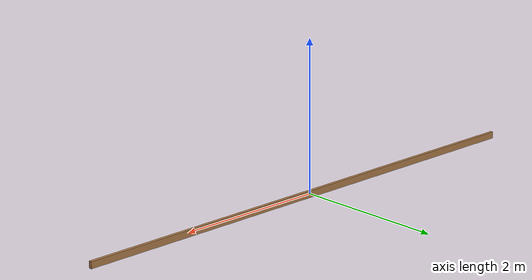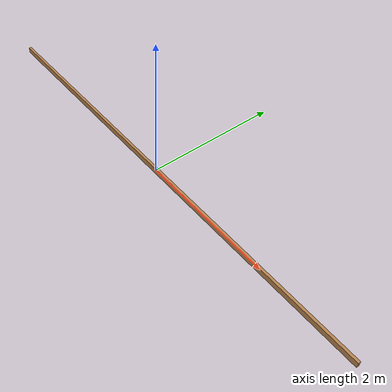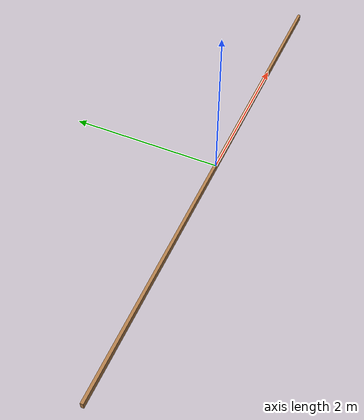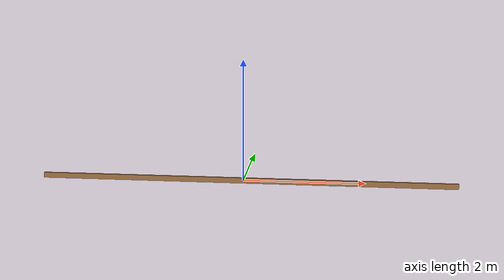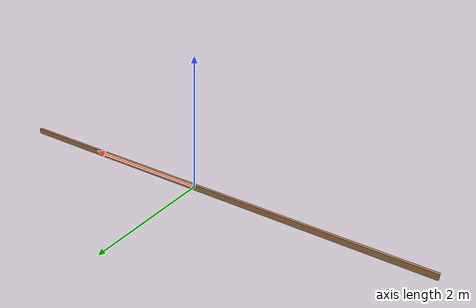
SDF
<?xml version='1.0'?>
<sdf version="1.6">
    <model name="frame">
        <static>true</static>
        <pose>0 0 0 0 0 0</pose>
        <link name="link">
            <collision name="collision">
            <!-- collisionは当たり判定 -->
                <geometry>
                    <box>
                    <!-- ｘの辺の長さ、ｙの辺の長さ、ｚの辺の長さ（ｍ） -->
                        <size>6.924 0.038 0.089</size>
                    </box>
                </geometry>
            </collision>
            <visual name="visual">
            <!-- visualは見た目 -->
                <geometry>
                    <box>
                        <size>6.924 0.038 0.089</size>
                    </box>
                </geometry>
                <material>
                    <script>
                        <uri>file://media/materials/scripts/gazebo.material</uri>
                        <name>Gazebo/Wood</name>
                    </script>
                </material>
            </visual>
        </link>
    </model>
</sdf>
